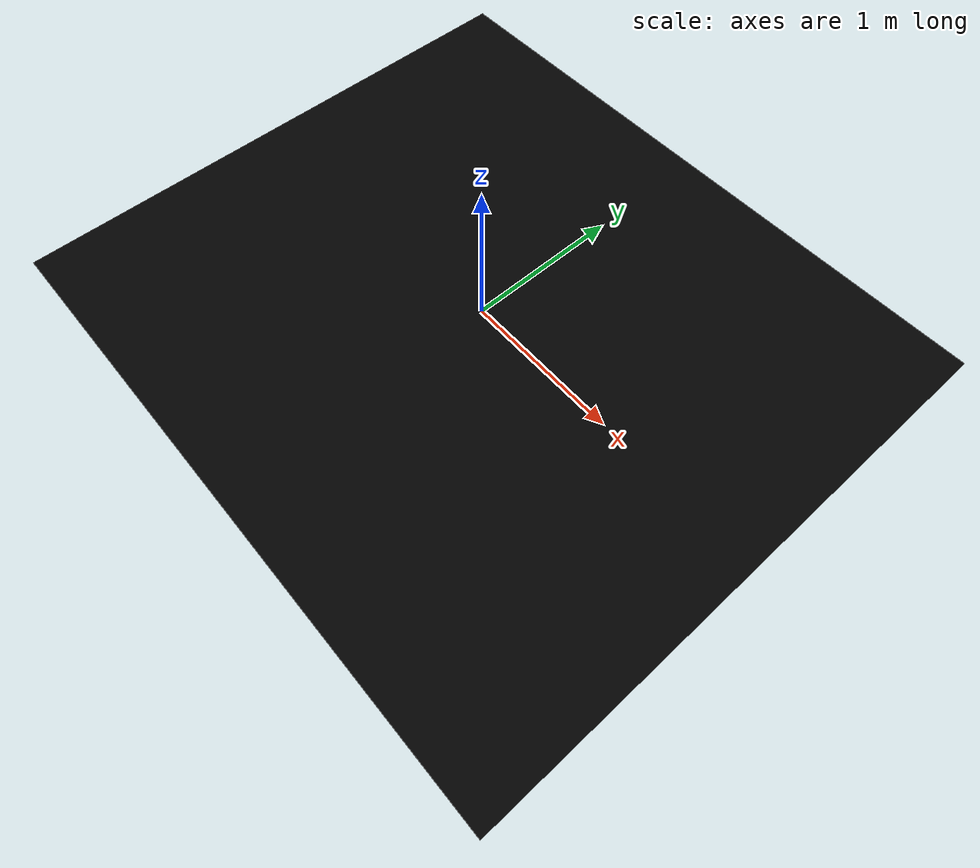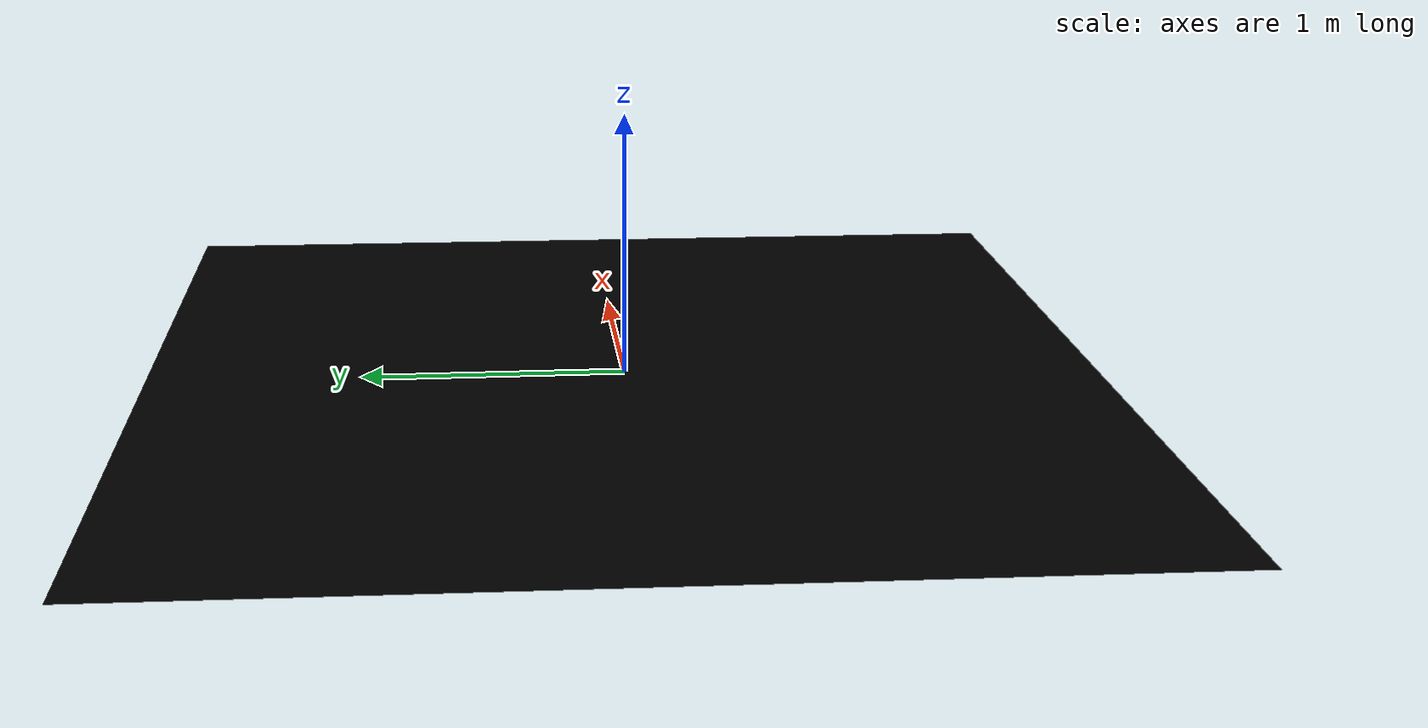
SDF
<?xml version="1.0" ?>
<sdf version="1.6">
  <model name="work_area">
    <static>true</static>

    <link name="work_area_link">

      <visual name="work_area_visual">
        <!-- Pose removed as it is now defined in the world file -->
        <geometry>
          <box>
            <size> 4.1402 3.6322 0.0001 </size>
          </box>
        </geometry>
        <material>
            <ambient>0.0 0.0 0.0 1.0</ambient>
            <diffuse>0.0 0.0 0.0 1.0</diffuse>
        </material>
      </visual>

      <collision name="work_area_collision">
        <!-- Pose removed as it is now defined in the world file -->
        <geometry>
          <box>
            <size> 4.1402 3.6322 0.0001 </size>
          </box>
        </geometry>
      </collision>

    </link>
  </model>
</sdf>
